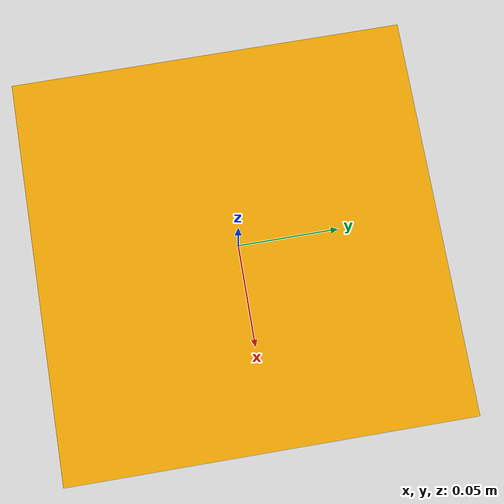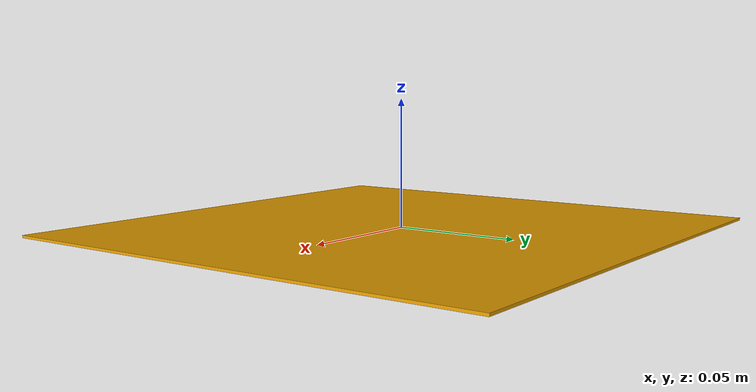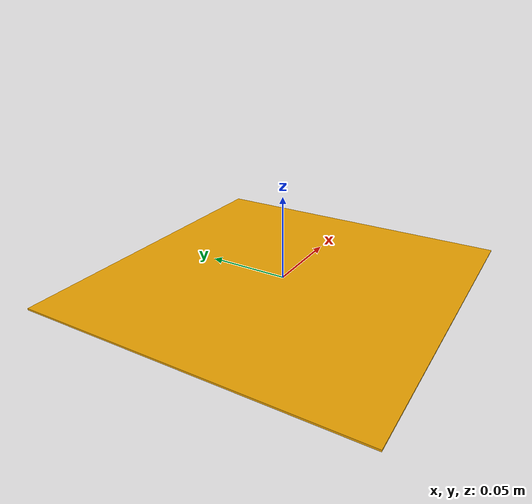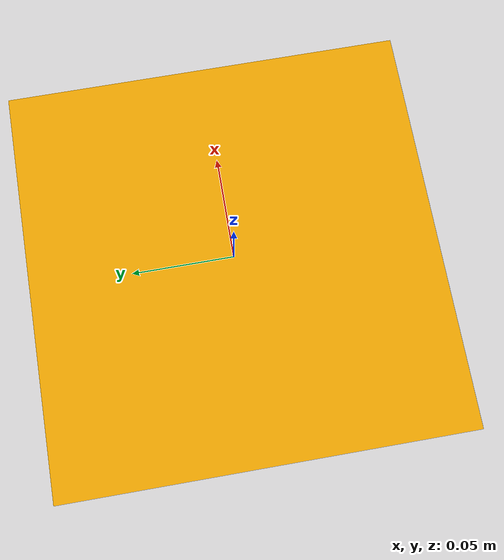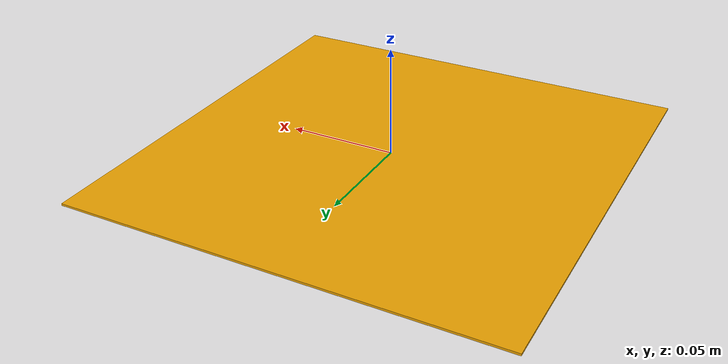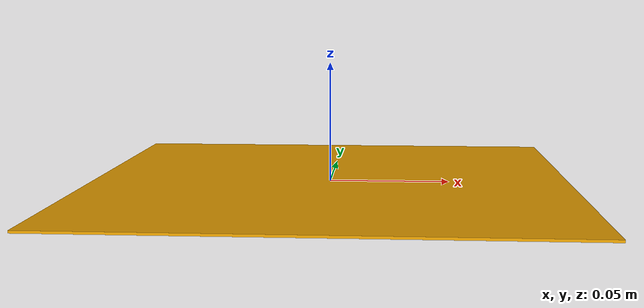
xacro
<?xml version ="1.0"?>
<robot name="april_tag" xmlns:xacro="http://ros.org/wiki/xacro">
	<link name="april_tag_base_link">
		<visual>
			<geometry>
				<box size="0.2 0.2 0.001"/>
			</geometry>
      <origin xyz="0 0 0" rpy="0 0 0"/>
		</visual>

		<inertial>
      		<mass value="0.1" />
      		<inertia ixx="1.0" ixy="0.0" ixz="0.0" iyy="1.0" iyz="0.0" izz="1.0" />
    </inertial>

    <collision>
      		<geometry>
        		<box size="0.2 0.2 0.001" />
      		</geometry>
          <origin xyz="0 0 0" rpy="0 0 0"/>
    </collision>

  </link>

	<gazebo reference="april_tag_base_link">
		<material>Apriltag1</material>
  </gazebo>
  <gazebo>
    <plugin name="target_controller" filename="libgazebo_ros_planar_move.so">
        <commandTopic>cmd_vel</commandTopic>
        <odometryTopic>odom</odometryTopic>
        <odometryFrame>odom</odometryFrame>
        <odometryRate>20.0</odometryRate>
        <robotBaseFrame>april_tag_link</robotBaseFrame>
      </plugin>
  </gazebo>

</robot>
